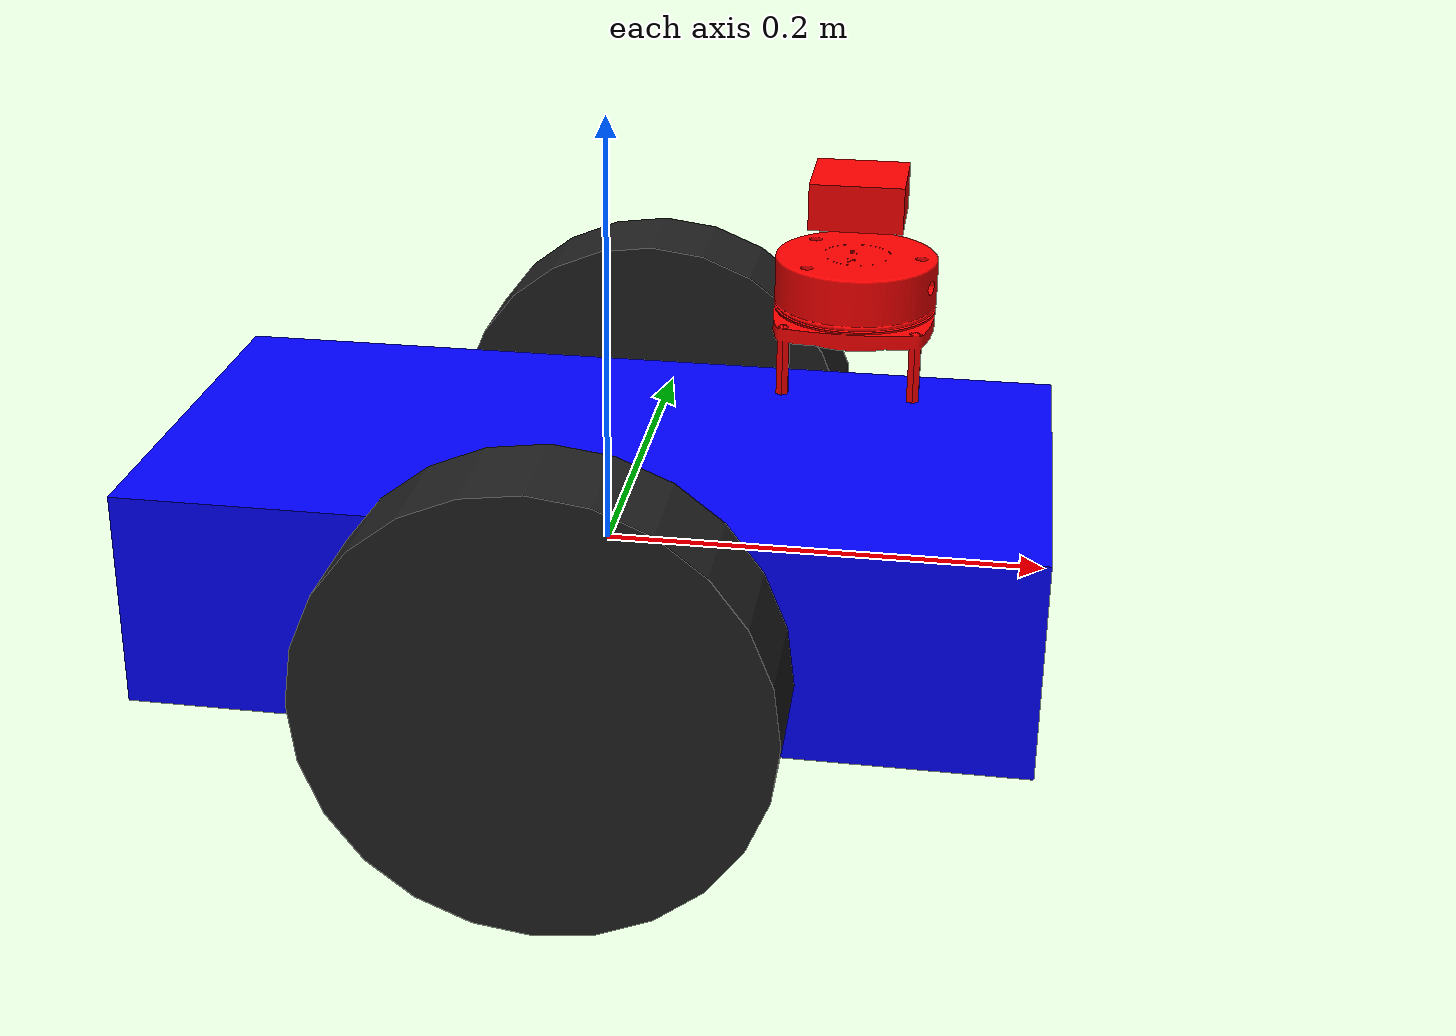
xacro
<?xml version='1.0'?>
<robot name="diffrobot" xmlns:xacro="http://www.ros.org/wiki/xacro">

    <xacro:include filename="$(find diffrobot_description)/urdf/diffrobot.gazebo"/>

    <link name="robot_footprint"/>

    <joint name="robot_footprint_joint" type="fixed">
        <origin xyz="0 0 0.0" rpy="0 0 0"/>
        <parent link="robot_footprint"/>
        <child link="base_link"/>
    </joint>

    <link name="base_link">
        <inertial>
            <origin xyz="0.0 0.0 0.0" rpy="0.0 0.0 0.0"/>
            <mass value="5.0"/>
            <inertia ixx="0.0" ixy="0.0" ixz="0.0" iyy="0.0" iyz="0.0" izz="0.0"/>
        </inertial>
        <visual name="base_link_visual">
            <origin xyz="0.0 0.0 0.0" rpy="0.0 0.0 0.0"/>
            <geometry>
                <box size="0.4 0.2 0.1"/>
            </geometry>
            <material name="">
                <color rgba="0.0 0.0 1.0 1.0"/>
                <texture filename=""/>
            </material>
        </visual>
        <collision>
            <origin xyz="0.0 0.0 0.0" rpy="0.0 0.0 0.0"/>
            <geometry>
                <box size="0.4 0.2 0.1"/>
            </geometry>
        </collision>
    </link>

    <link name="left_wheel">
        <inertial>
            <origin xyz="0.0 0.0 0.0" rpy="0.0 1.5707 1.5707"/>
            <mass value="5.0"/>
            <inertia ixx="0.1" ixy="0.0" ixz="0.0" iyy="0.1" iyz="0.0" izz="0.1"/>
        </inertial>
        <visual name="left_wheel_visual">
            <origin xyz="0.0 0.0 0.0" rpy="0.0 0.0 0.0"/>
            <geometry>
                <cylinder radius="0.1" length="0.05"/>
            </geometry>
        </visual>
        <collision name="left_wheel_collision">
            <origin xyz="0.0 0.0 0.0" rpy="0.0 0.0 0.0"/>
            <geometry>
                <cylinder radius="0.1" length="0.05"/>
            </geometry>
        </collision>
    </link>

    <link name="right_wheel">
        <inertial>
            <origin xyz="0.0 0.0 0.0" rpy="0.0 0.0 0.0"/>
            <mass value="5.0"/>
            <inertia ixx="0.1" ixy="0.0" ixz="0.0" iyy="0.1" iyz="0.0" izz="0.1"/>
        </inertial>
        <visual name="right_wheel_visual">
            <origin xyz="0.0 0.0 0.0" rpy="0.0 0.0 0.0"/>
            <geometry>
                <cylinder radius="0.1" length="0.05"/>
            </geometry>
        </visual>
        <collision name="right_wheel_collision">
            <origin xyz="0.0 0.0 0.0" rpy="0.0 0.0 0.0"/>
            <geometry>
                <cylinder radius="0.1" length="0.05"/>
            </geometry>
        </collision>
    </link>

    <joint name="wheel_left_joint" type="continuous">
        <origin xyz="0.0 0.15 0.0" rpy="0.0 1.5705 1.5705"/>
        <parent link="base_link"/>
        <child link="left_wheel"/>
        <axis xyz="0.0 0.0 1.0"/>
    </joint>

    <joint name="wheel_right_joint" type="continuous">
        <origin xyz="0.0 -0.15 0.0" rpy="0.0 1.5705 1.5705"/>
        <parent link="base_link"/>
        <child link="right_wheel"/>
        <axis xyz="0.0 0.0 1.0"/>
    </joint>

    <link name="front_caster">
        <inertial>
            <origin xyz="0.0 0.0 0.0" rpy="0.0 0.0 0.0"/>
            <mass value="0.1"/>
            <inertia ixx="0.0" ixy="0.0" ixz="0.0" iyy="0.0" iyz="0.0" izz="0.0"/>
        </inertial>
        <visual name="front_caster_visual">
            <origin xyz="0.0 0.0 0.0" rpy="0.0 0.0 0.0"/>
            <geometry>
                <sphere radius="0.0499"/>
            </geometry>
            <material name="">
                <color rgba="1.0 1.0 1.0 1.0"/>
                <texture filename=""/>
            </material>
        </visual>
        <collision>
            <origin xyz="0.0 0.0 0.0" rpy="0.0 0.0 0.0"/>
            <geometry>
                <sphere radius="0.0499"/>
            </geometry>
        </collision>
    </link>

    <joint name="front_caster_joint" type="fixed">
        <origin xyz="0.15 0.0 -0.05" rpy="0.0 0.0 0.0"/>
        <parent link="base_link"/>
        <child link="front_caster"/>
        <axis xyz="0.0 0.0 0.0"/>
    </joint>

    <link name="back_caster">
        <inertial>
            <origin xyz="0.0 0.0 0.0" rpy="0.0 0.0 0.0"/>
            <mass value="0.1"/>
            <inertia ixx="0.0" ixy="0.0" ixz="0.0" iyy="0.0" iyz="0.0" izz="0.0"/>
        </inertial>
        <visual name="back_caster_visual">
            <origin xyz="0.0 0.0 0.0" rpy="0.0 0.0 0.0"/>
            <geometry>
                <sphere radius="0.0499"/>
            </geometry>
            <material name="">
                <color rgba="1.0 1.0 1.0 1.0"/>
                <texture filename=""/>
            </material>
        </visual>
        <collision>
            <origin xyz="0.0 0.0 0.0" rpy="0.0 0.0 0.0"/>
            <geometry>
                <sphere radius="0.0499"/>
            </geometry>
        </collision>
    </link>

    <joint name="back_caster_joint" type="fixed">
        <origin xyz="-0.15 0.0 -0.05" rpy="0.0 0.0 0.0"/>
        <parent link="base_link"/>
        <child link="back_caster"/>
        <axis xyz="0.0 0.0 0.0"/>
    </joint>

    <link name="lidar_link">
        <inertial>
            <origin xyz="0.0 0.0 0.0" rpy="0.0 0.0 0.0"/>
            <mass value="0.1"/>
            <inertia ixx="0.0" ixy="0.0" ixz="0.0" iyy="0.0" iyz="0.0" izz="0.0"/>
        </inertial>
        <visual name="lidar_link_visual">
            <origin xyz="0.0 0.0 0.0" rpy="0.0 0.0 0.0"/>
            <geometry>
                <mesh filename="package://diffrobot_description/meshes/lidar_link.STL"/>
            </geometry>
            <material name="">
                <color rgba="1.0 0.0 0.0 1.0"/>
                <texture filename=""/>
            </material>
        </visual>
        <collision name="lidar_collision">
            <origin xyz="0.0 0.0 0.0" rpy="0.0 0.0 0.0"/>
            <geometry>
                <mesh filename="package://diffrobot_description/meshes/lidar_link.STL"/>
            </geometry>
        </collision>
    </link>

    <joint name="lidar_joint" type="fixed">
        <origin xyz="0.11 0.0 0.12" rpy="1.5708 0.0 1.5708"/>
        <parent link="base_link"/>
        <child link="lidar_link"/>
        <axis xyz="0.0 0.0 0.0"/>
    </joint>

    <link name="laser_data_link">

    </link>

    <joint name="laser_data_joint" type="fixed">
        <origin xyz="0.0 0.0 0.0" rpy="0.0 -1.5708 -1.5708"/>
        <parent link="lidar_link"/>
        <child link="laser_data_link"/>
    </joint>

    <link name="camera_link">
        <inertial>
            <origin xyz="0.0 0.0 0.0" rpy="0.0 0.0 0.0"/>
            <mass value="0.2"/>
            <inertia ixx="0.0" ixy="0.0" ixz="0.0" iyy="0.0" iyz="0.0" izz="0.0"/>
        </inertial>
        <visual name="camera_visual">
            <origin xyz="0.0 0.0 0.0" rpy="0.0 0.0 0.0"/>
            <geometry>
                <box size="0.04 0.04 0.02"/>
            </geometry>
            <material name="">
                <color rgba="1.0 0.0 0.0 1.0"/>
                <texture filename=""/>
            </material>
        </visual>
        <collision>
            <origin xyz="0.0 0.0 0.0" rpy="0.0 0.0 0.0"/>
            <geometry>
                 <box size="0.04 0.04 0.02"/>
            </geometry>
        </collision>
    </link>

    <joint name="camera_joint" type="fixed">
        <origin xyz="0.11 0.0 0.17" rpy="0.0 0.0 0.0"/>
        <parent link="base_link"/>
        <child link="camera_link"/>
    </joint>
</robot>
